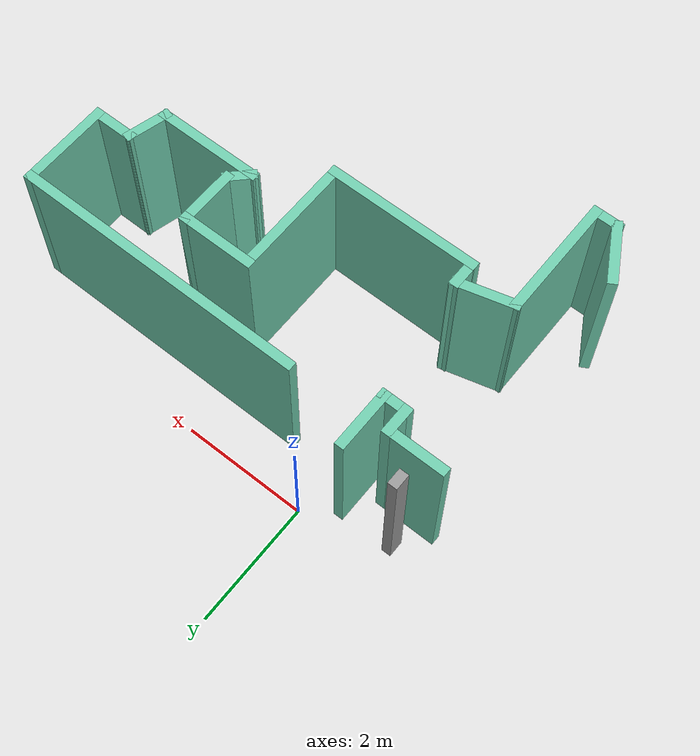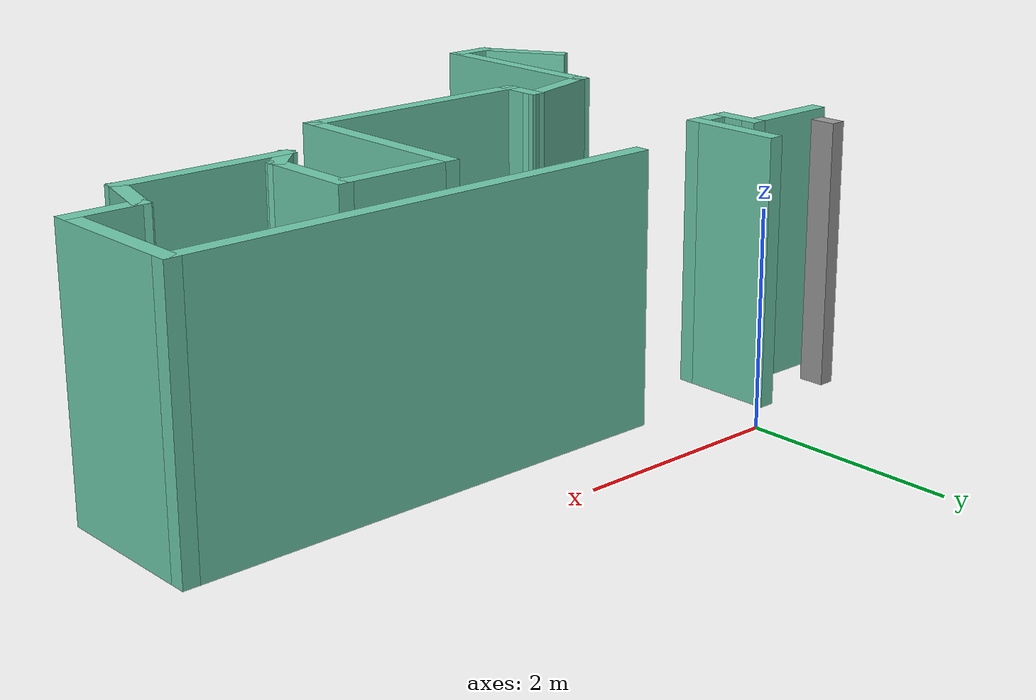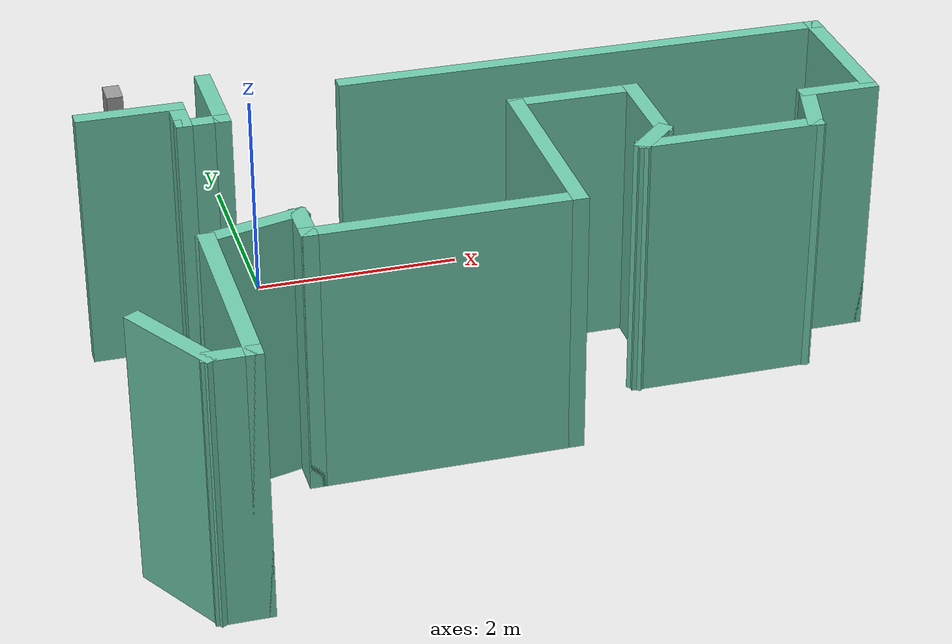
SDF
<sdf version="1.6">
 <model name="map_28">
  <link name="Wall_24">
   <pose>-1.3355 -0.419695 0 0 -0 1.5708</pose>
   <visual name="Wall_24_Visual">
    <pose>0 0 1.25 0 -0 0</pose>
    <geometry><box><size>0.25 0.15 2.5</size></box></geometry>
    <material>
     <script><uri>file://media/materials/scripts/gazebo.material</uri><name>Gazebo/Grey</name></script>
     <ambient>1 1 1 1</ambient>
     <shader type="pixel"/>
    </material>
    <meta><layer>0</layer></meta>
   </visual>
   <collision name="Wall_24_Collision">
    <pose>0 0 1.25 0 -0 0</pose>
    <geometry><box><size>0.25 0.15 2.5</size></box></geometry>
    <surface>
     <friction>
      <ode><mu>1</mu><mu2>1</mu2><fdir1>0 0 0</fdir1><slip1>0</slip1><slip2>0</slip2></ode>
      <torsional>
       <coefficient>1</coefficient>
       <patch_radius>0</patch_radius>
       <surface_radius>0</surface_radius>
       <use_patch_radius>1</use_patch_radius>
       <ode><slip>0</slip></ode>
      </torsional>
     </friction>
     <bounce><restitution_coefficient>0</restitution_coefficient><threshold>1e+06</threshold></bounce>
     <contact>
      <collide_without_contact>0</collide_without_contact>
      <collide_without_contact_bitmask>1</collide_without_contact_bitmask>
      <collide_bitmask>1</collide_bitmask>
      <ode>
       <soft_cfm>0</soft_cfm>
       <soft_erp>0.2</soft_erp>
       <kp>1e+13</kp>
       <kd>1</kd>
       <max_vel>0.01</max_vel>
       <min_depth>0</min_depth>
      </ode>
      <bullet>
       <split_impulse>1</split_impulse>
       <split_impulse_penetration_threshold>-0.01</split_impulse_penetration_threshold>
       <soft_cfm>0</soft_cfm>
       <soft_erp>0.2</soft_erp>
       <kp>1e+13</kp>
       <kd>1</kd>
      </bullet>
     </contact>
    </surface>
   </collision>
  </link>
  <link name="Wall_26">
   <pose>-0.485501 -0.794695 0 0 0 -1.5708</pose>
   <visual name="Wall_26_Visual">
    <pose>0 0 1.25 0 -0 0</pose>
    <geometry><box><size>1 0.15 2.5</size></box></geometry>
    <material>
     <script><uri>file://media/materials/scripts/gazebo.material</uri><name>Gazebo/Grey</name></script>
     <ambient>0.435294 0.796078 0.67451 1</ambient>
     <shader type="pixel"/>
    </material>
    <meta><layer>0</layer></meta>
   </visual>
   <collision name="Wall_26_Collision">
    <pose>0 0 1.25 0 -0 0</pose>
    <geometry><box><size>1 0.15 2.5</size></box></geometry>
    <surface>
     <friction>
      <ode><mu>1</mu><mu2>1</mu2><fdir1>0 0 0</fdir1><slip1>0</slip1><slip2>0</slip2></ode>
      <torsional>
       <coefficient>1</coefficient>
       <patch_radius>0</patch_radius>
       <surface_radius>0</surface_radius>
       <use_patch_radius>1</use_patch_radius>
       <ode><slip>0</slip></ode>
      </torsional>
     </friction>
     <bounce><restitution_coefficient>0</restitution_coefficient><threshold>1e+06</threshold></bounce>
     <contact>
      <collide_without_contact>0</collide_without_contact>
      <collide_without_contact_bitmask>1</collide_without_contact_bitmask>
      <collide_bitmask>1</collide_bitmask>
      <ode>
       <soft_cfm>0</soft_cfm>
       <soft_erp>0.2</soft_erp>
       <kp>1e+13</kp>
       <kd>1</kd>
       <max_vel>0.01</max_vel>
       <min_depth>0</min_depth>
      </ode>
      <bullet>
       <split_impulse>1</split_impulse>
       <split_impulse_penetration_threshold>-0.01</split_impulse_penetration_threshold>
       <soft_cfm>0</soft_cfm>
       <soft_erp>0.2</soft_erp>
       <kp>1e+13</kp>
       <kd>1</kd>
      </bullet>
     </contact>
    </surface>
   </collision>
  </link>
  <link name="Wall_27">
   <pose>-0.660501 -1.21969 0 0 -0 3.14159</pose>
   <visual name="Wall_27_Visual">
    <pose>0 0 1.25 0 -0 0</pose>
    <geometry><box><size>0.5 0.15 2.5</size></box></geometry>
    <material>
     <script><uri>file://media/materials/scripts/gazebo.material</uri><name>Gazebo/Grey</name></script>
     <ambient>0.435294 0.796078 0.67451 1</ambient>
     <shader type="pixel"/>
    </material>
    <meta><layer>0</layer></meta>
   </visual>
   <collision name="Wall_27_Collision">
    <pose>0 0 1.25 0 -0 0</pose>
    <geometry><box><size>0.5 0.15 2.5</size></box></geometry>
    <surface>
     <friction>
      <ode><mu>1</mu><mu2>1</mu2><fdir1>0 0 0</fdir1><slip1>0</slip1><slip2>0</slip2></ode>
      <torsional>
       <coefficient>1</coefficient>
       <patch_radius>0</patch_radius>
       <surface_radius>0</surface_radius>
       <use_patch_radius>1</use_patch_radius>
       <ode><slip>0</slip></ode>
      </torsional>
     </friction>
     <bounce><restitution_coefficient>0</restitution_coefficient><threshold>1e+06</threshold></bounce>
     <contact>
      <collide_without_contact>0</collide_without_contact>
      <collide_without_contact_bitmask>1</collide_without_contact_bitmask>
      <collide_bitmask>1</collide_bitmask>
      <ode>
       <soft_cfm>0</soft_cfm>
       <soft_erp>0.2</soft_erp>
       <kp>1e+13</kp>
       <kd>1</kd>
       <max_vel>0.01</max_vel>
       <min_depth>0</min_depth>
      </ode>
      <bullet>
       <split_impulse>1</split_impulse>
       <split_impulse_penetration_threshold>-0.01</split_impulse_penetration_threshold>
       <soft_cfm>0</soft_cfm>
       <soft_erp>0.2</soft_erp>
       <kp>1e+13</kp>
       <kd>1</kd>
      </bullet>
     </contact>
    </surface>
   </collision>
  </link>
  <link name="Wall_34">
   <pose>-0.835501 -1.04469 0 0 -0 1.5708</pose>
   <visual name="Wall_34_Visual">
    <pose>0 0 1.25 0 -0 0</pose>
    <geometry><box><size>0.5 0.15 2.5</size></box></geometry>
    <material>
     <script><uri>file://media/materials/scripts/gazebo.material</uri><name>Gazebo/Grey</name></script>
     <ambient>0.435294 0.796078 0.67451 1</ambient>
     <shader type="pixel"/>
    </material>
    <meta><layer>0</layer></meta>
   </visual>
   <collision name="Wall_34_Collision">
    <pose>0 0 1.25 0 -0 0</pose>
    <geometry><box><size>0.5 0.15 2.5</size></box></geometry>
    <surface>
     <friction>
      <ode><mu>1</mu><mu2>1</mu2><fdir1>0 0 0</fdir1><slip1>0</slip1><slip2>0</slip2></ode>
      <torsional>
       <coefficient>1</coefficient>
       <patch_radius>0</patch_radius>
       <surface_radius>0</surface_radius>
       <use_patch_radius>1</use_patch_radius>
       <ode><slip>0</slip></ode>
      </torsional>
     </friction>
     <bounce><restitution_coefficient>0</restitution_coefficient><threshold>1e+06</threshold></bounce>
     <contact>
      <collide_without_contact>0</collide_without_contact>
      <collide_without_contact_bitmask>1</collide_without_contact_bitmask>
      <collide_bitmask>1</collide_bitmask>
      <ode>
       <soft_cfm>0</soft_cfm>
       <soft_erp>0.2</soft_erp>
       <kp>1e+13</kp>
       <kd>1</kd>
       <max_vel>0.01</max_vel>
       <min_depth>0</min_depth>
      </ode>
      <bullet>
       <split_impulse>1</split_impulse>
       <split_impulse_penetration_threshold>-0.01</split_impulse_penetration_threshold>
       <soft_cfm>0</soft_cfm>
       <soft_erp>0.2</soft_erp>
       <kp>1e+13</kp>
       <kd>1</kd>
      </bullet>
     </contact>
    </surface>
   </collision>
  </link>
  <link name="Wall_37">
   <pose>-1.2605 -0.869695 0 0 -0 3.14159</pose>
   <visual name="Wall_37_Visual">
    <pose>0 0 1.25 0 -0 0</pose>
    <geometry><box><size>1 0.15 2.5</size></box></geometry>
    <material>
     <script><uri>file://media/materials/scripts/gazebo.material</uri><name>Gazebo/Grey</name></script>
     <ambient>0.435294 0.796078 0.67451 1</ambient>
     <shader type="pixel"/>
    </material>
    <meta><layer>0</layer></meta>
   </visual>
   <collision name="Wall_37_Collision">
    <pose>0 0 1.25 0 -0 0</pose>
    <geometry><box><size>1 0.15 2.5</size></box></geometry>
    <surface>
     <friction>
      <ode><mu>1</mu><mu2>1</mu2><fdir1>0 0 0</fdir1><slip1>0</slip1><slip2>0</slip2></ode>
      <torsional>
       <coefficient>1</coefficient>
       <patch_radius>0</patch_radius>
       <surface_radius>0</surface_radius>
       <use_patch_radius>1</use_patch_radius>
       <ode><slip>0</slip></ode>
      </torsional>
     </friction>
     <bounce><restitution_coefficient>0</restitution_coefficient><threshold>1e+06</threshold></bounce>
     <contact>
      <collide_without_contact>0</collide_without_contact>
      <collide_without_contact_bitmask>1</collide_without_contact_bitmask>
      <collide_bitmask>1</collide_bitmask>
      <ode>
       <soft_cfm>0</soft_cfm>
       <soft_erp>0.2</soft_erp>
       <kp>1e+13</kp>
       <kd>1</kd>
       <max_vel>0.01</max_vel>
       <min_depth>0</min_depth>
      </ode>
      <bullet>
       <split_impulse>1</split_impulse>
       <split_impulse_penetration_threshold>-0.01</split_impulse_penetration_threshold>
       <soft_cfm>0</soft_cfm>
       <soft_erp>0.2</soft_erp>
       <kp>1e+13</kp>
       <kd>1</kd>
      </bullet>
     </contact>
    </surface>
   </collision>
  </link>
  <link name="Wall_55">
   <pose>-1.59238 -4.82675 0 0 0 -1.0472</pose>
   <visual name="Wall_55_Visual">
    <pose>0 0 1.25 0 -0 0</pose>
    <geometry><box><size>1 0.15 2.5</size></box></geometry>
    <material>
     <script><uri>file://media/materials/scripts/gazebo.material</uri><name>Gazebo/Grey</name></script>
     <ambient>0.435294 0.796078 0.67451 1</ambient>
     <shader type="pixel"/>
    </material>
    <meta><layer>0</layer></meta>
   </visual>
   <collision name="Wall_55_Collision">
    <pose>0 0 1.25 0 -0 0</pose>
    <geometry><box><size>1 0.15 2.5</size></box></geometry>
    <surface>
     <friction>
      <ode><mu>1</mu><mu2>1</mu2><fdir1>0 0 0</fdir1><slip1>0</slip1><slip2>0</slip2></ode>
      <torsional>
       <coefficient>1</coefficient>
       <patch_radius>0</patch_radius>
       <surface_radius>0</surface_radius>
       <use_patch_radius>1</use_patch_radius>
       <ode><slip>0</slip></ode>
      </torsional>
     </friction>
     <bounce><restitution_coefficient>0</restitution_coefficient><threshold>1e+06</threshold></bounce>
     <contact>
      <collide_without_contact>0</collide_without_contact>
      <collide_without_contact_bitmask>1</collide_without_contact_bitmask>
      <collide_bitmask>1</collide_bitmask>
      <ode>
       <soft_cfm>0</soft_cfm>
       <soft_erp>0.2</soft_erp>
       <kp>1e+13</kp>
       <kd>1</kd>
       <max_vel>0.01</max_vel>
       <min_depth>0</min_depth>
      </ode>
      <bullet>
       <split_impulse>1</split_impulse>
       <split_impulse_penetration_threshold>-0.01</split_impulse_penetration_threshold>
       <soft_cfm>0</soft_cfm>
       <soft_erp>0.2</soft_erp>
       <kp>1e+13</kp>
       <kd>1</kd>
      </bullet>
     </contact>
    </surface>
   </collision>
  </link>
  <link name="Wall_56">
   <pose>-1.20488 -5.19481 0 0 -0 0</pose>
   <visual name="Wall_56_Visual">
    <pose>0 0 1.25 0 -0 0</pose>
    <geometry><box><size>0.5 0.15 2.5</size></box></geometry>
    <material>
     <script><uri>file://media/materials/scripts/gazebo.material</uri><name>Gazebo/Grey</name></script>
     <ambient>0.435294 0.796078 0.67451 1</ambient>
     <shader type="pixel"/>
    </material>
    <meta><layer>0</layer></meta>
   </visual>
   <collision name="Wall_56_Collision">
    <pose>0 0 1.25 0 -0 0</pose>
    <geometry><box><size>0.5 0.15 2.5</size></box></geometry>
    <surface>
     <friction>
      <ode><mu>1</mu><mu2>1</mu2><fdir1>0 0 0</fdir1><slip1>0</slip1><slip2>0</slip2></ode>
      <torsional>
       <coefficient>1</coefficient>
       <patch_radius>0</patch_radius>
       <surface_radius>0</surface_radius>
       <use_patch_radius>1</use_patch_radius>
       <ode><slip>0</slip></ode>
      </torsional>
     </friction>
     <bounce><restitution_coefficient>0</restitution_coefficient><threshold>1e+06</threshold></bounce>
     <contact>
      <collide_without_contact>0</collide_without_contact>
      <collide_without_contact_bitmask>1</collide_without_contact_bitmask>
      <collide_bitmask>1</collide_bitmask>
      <ode>
       <soft_cfm>0</soft_cfm>
       <soft_erp>0.2</soft_erp>
       <kp>1e+13</kp>
       <kd>1</kd>
       <max_vel>0.01</max_vel>
       <min_depth>0</min_depth>
      </ode>
      <bullet>
       <split_impulse>1</split_impulse>
       <split_impulse_penetration_threshold>-0.01</split_impulse_penetration_threshold>
       <soft_cfm>0</soft_cfm>
       <soft_erp>0.2</soft_erp>
       <kp>1e+13</kp>
       <kd>1</kd>
      </bullet>
     </contact>
    </surface>
   </collision>
  </link>
  <link name="Wall_57">
   <pose>-1.02988 -4.26981 0 0 -0 1.5708</pose>
   <visual name="Wall_57_Visual">
    <pose>0 0 1.25 0 -0 0</pose>
    <geometry><box><size>2 0.15 2.5</size></box></geometry>
    <material>
     <script><uri>file://media/materials/scripts/gazebo.material</uri><name>Gazebo/Grey</name></script>
     <ambient>0.435294 0.796078 0.67451 1</ambient>
     <shader type="pixel"/>
    </material>
    <meta><layer>0</layer></meta>
   </visual>
   <collision name="Wall_57_Collision">
    <pose>0 0 1.25 0 -0 0</pose>
    <geometry><box><size>2 0.15 2.5</size></box></geometry>
    <surface>
     <friction>
      <ode><mu>1</mu><mu2>1</mu2><fdir1>0 0 0</fdir1><slip1>0</slip1><slip2>0</slip2></ode>
      <torsional>
       <coefficient>1</coefficient>
       <patch_radius>0</patch_radius>
       <surface_radius>0</surface_radius>
       <use_patch_radius>1</use_patch_radius>
       <ode><slip>0</slip></ode>
      </torsional>
     </friction>
     <bounce><restitution_coefficient>0</restitution_coefficient><threshold>1e+06</threshold></bounce>
     <contact>
      <collide_without_contact>0</collide_without_contact>
      <collide_without_contact_bitmask>1</collide_without_contact_bitmask>
      <collide_bitmask>1</collide_bitmask>
      <ode>
       <soft_cfm>0</soft_cfm>
       <soft_erp>0.2</soft_erp>
       <kp>1e+13</kp>
       <kd>1</kd>
       <max_vel>0.01</max_vel>
       <min_depth>0</min_depth>
      </ode>
      <bullet>
       <split_impulse>1</split_impulse>
       <split_impulse_penetration_threshold>-0.01</split_impulse_penetration_threshold>
       <soft_cfm>0</soft_cfm>
       <soft_erp>0.2</soft_erp>
       <kp>1e+13</kp>
       <kd>1</kd>
      </bullet>
     </contact>
    </surface>
   </collision>
  </link>
  <link name="Wall_58">
   <pose>-0.619361 -3.23481 0 0 -0 0.261799</pose>
   <visual name="Wall_58_Visual">
    <pose>0 0 1.25 0 -0 0</pose>
    <geometry><box><size>1 0.15 2.5</size></box></geometry>
    <material>
     <script><uri>file://media/materials/scripts/gazebo.material</uri><name>Gazebo/Grey</name></script>
     <ambient>0.435294 0.796078 0.67451 1</ambient>
     <shader type="pixel"/>
    </material>
    <meta><layer>0</layer></meta>
   </visual>
   <collision name="Wall_58_Collision">
    <pose>0 0 1.25 0 -0 0</pose>
    <geometry><box><size>1 0.15 2.5</size></box></geometry>
    <surface>
     <friction>
      <ode><mu>1</mu><mu2>1</mu2><fdir1>0 0 0</fdir1><slip1>0</slip1><slip2>0</slip2></ode>
      <torsional>
       <coefficient>1</coefficient>
       <patch_radius>0</patch_radius>
       <surface_radius>0</surface_radius>
       <use_patch_radius>1</use_patch_radius>
       <ode><slip>0</slip></ode>
      </torsional>
     </friction>
     <bounce><restitution_coefficient>0</restitution_coefficient><threshold>1e+06</threshold></bounce>
     <contact>
      <collide_without_contact>0</collide_without_contact>
      <collide_without_contact_bitmask>1</collide_without_contact_bitmask>
      <collide_bitmask>1</collide_bitmask>
      <ode>
       <soft_cfm>0</soft_cfm>
       <soft_erp>0.2</soft_erp>
       <kp>1e+13</kp>
       <kd>1</kd>
       <max_vel>0.01</max_vel>
       <min_depth>0</min_depth>
      </ode>
      <bullet>
       <split_impulse>1</split_impulse>
       <split_impulse_penetration_threshold>-0.01</split_impulse_penetration_threshold>
       <soft_cfm>0</soft_cfm>
       <soft_erp>0.2</soft_erp>
       <kp>1e+13</kp>
       <kd>1</kd>
      </bullet>
     </contact>
    </surface>
   </collision>
  </link>
  <link name="Wall_59">
   <pose>-0.208842 -3.29981 0 0 0 -1.5708</pose>
   <visual name="Wall_59_Visual">
    <pose>0 0 1.25 0 -0 0</pose>
    <geometry><box><size>0.5 0.15 2.5</size></box></geometry>
    <material>
     <script><uri>file://media/materials/scripts/gazebo.material</uri><name>Gazebo/Grey</name></script>
     <ambient>0.435294 0.796078 0.67451 1</ambient>
     <shader type="pixel"/>
    </material>
    <meta><layer>0</layer></meta>
   </visual>
   <collision name="Wall_59_Collision">
    <pose>0 0 1.25 0 -0 0</pose>
    <geometry><box><size>0.5 0.15 2.5</size></box></geometry>
    <surface>
     <friction>
      <ode><mu>1</mu><mu2>1</mu2><fdir1>0 0 0</fdir1><slip1>0</slip1><slip2>0</slip2></ode>
      <torsional>
       <coefficient>1</coefficient>
       <patch_radius>0</patch_radius>
       <surface_radius>0</surface_radius>
       <use_patch_radius>1</use_patch_radius>
       <ode><slip>0</slip></ode>
      </torsional>
     </friction>
     <bounce><restitution_coefficient>0</restitution_coefficient><threshold>1e+06</threshold></bounce>
     <contact>
      <collide_without_contact>0</collide_without_contact>
      <collide_without_contact_bitmask>1</collide_without_contact_bitmask>
      <collide_bitmask>1</collide_bitmask>
      <ode>
       <soft_cfm>0</soft_cfm>
       <soft_erp>0.2</soft_erp>
       <kp>1e+13</kp>
       <kd>1</kd>
       <max_vel>0.01</max_vel>
       <min_depth>0</min_depth>
      </ode>
      <bullet>
       <split_impulse>1</split_impulse>
       <split_impulse_penetration_threshold>-0.01</split_impulse_penetration_threshold>
       <soft_cfm>0</soft_cfm>
       <soft_erp>0.2</soft_erp>
       <kp>1e+13</kp>
       <kd>1</kd>
      </bullet>
     </contact>
    </surface>
   </collision>
  </link>
  <link name="Wall_60">
   <pose>0.966158 -3.47481 0 0 -0 0</pose>
   <visual name="Wall_60_Visual">
    <pose>0 0 1.25 0 -0 0</pose>
    <geometry><box><size>2.5 0.15 2.5</size></box></geometry>
    <material>
     <script><uri>file://media/materials/scripts/gazebo.material</uri><name>Gazebo/Grey</name></script>
     <ambient>0.435294 0.796078 0.67451 1</ambient>
     <shader type="pixel"/>
    </material>
    <meta><layer>0</layer></meta>
   </visual>
   <collision name="Wall_60_Collision">
    <pose>0 0 1.25 0 -0 0</pose>
    <geometry><box><size>2.5 0.15 2.5</size></box></geometry>
    <surface>
     <friction>
      <ode><mu>1</mu><mu2>1</mu2><fdir1>0 0 0</fdir1><slip1>0</slip1><slip2>0</slip2></ode>
      <torsional>
       <coefficient>1</coefficient>
       <patch_radius>0</patch_radius>
       <surface_radius>0</surface_radius>
       <use_patch_radius>1</use_patch_radius>
       <ode><slip>0</slip></ode>
      </torsional>
     </friction>
     <bounce><restitution_coefficient>0</restitution_coefficient><threshold>1e+06</threshold></bounce>
     <contact>
      <collide_without_contact>0</collide_without_contact>
      <collide_without_contact_bitmask>1</collide_without_contact_bitmask>
      <collide_bitmask>1</collide_bitmask>
      <ode>
       <soft_cfm>0</soft_cfm>
       <soft_erp>0.2</soft_erp>
       <kp>1e+13</kp>
       <kd>1</kd>
       <max_vel>0.01</max_vel>
       <min_depth>0</min_depth>
      </ode>
      <bullet>
       <split_impulse>1</split_impulse>
       <split_impulse_penetration_threshold>-0.01</split_impulse_penetration_threshold>
       <soft_cfm>0</soft_cfm>
       <soft_erp>0.2</soft_erp>
       <kp>1e+13</kp>
       <kd>1</kd>
      </bullet>
     </contact>
    </surface>
   </collision>
  </link>
  <link name="Wall_61">
   <pose>2.14116 -2.54981 0 0 -0 1.5708</pose>
   <visual name="Wall_61_Visual">
    <pose>0 0 1.25 0 -0 0</pose>
    <geometry><box><size>2 0.15 2.5</size></box></geometry>
    <material>
     <script><uri>file://media/materials/scripts/gazebo.material</uri><name>Gazebo/Grey</name></script>
     <ambient>0.435294 0.796078 0.67451 1</ambient>
     <shader type="pixel"/>
    </material>
    <meta><layer>0</layer></meta>
   </visual>
   <collision name="Wall_61_Collision">
    <pose>0 0 1.25 0 -0 0</pose>
    <geometry><box><size>2 0.15 2.5</size></box></geometry>
    <surface>
     <friction>
      <ode><mu>1</mu><mu2>1</mu2><fdir1>0 0 0</fdir1><slip1>0</slip1><slip2>0</slip2></ode>
      <torsional>
       <coefficient>1</coefficient>
       <patch_radius>0</patch_radius>
       <surface_radius>0</surface_radius>
       <use_patch_radius>1</use_patch_radius>
       <ode><slip>0</slip></ode>
      </torsional>
     </friction>
     <bounce><restitution_coefficient>0</restitution_coefficient><threshold>1e+06</threshold></bounce>
     <contact>
      <collide_without_contact>0</collide_without_contact>
      <collide_without_contact_bitmask>1</collide_without_contact_bitmask>
      <collide_bitmask>1</collide_bitmask>
      <ode>
       <soft_cfm>0</soft_cfm>
       <soft_erp>0.2</soft_erp>
       <kp>1e+13</kp>
       <kd>1</kd>
       <max_vel>0.01</max_vel>
       <min_depth>0</min_depth>
      </ode>
      <bullet>
       <split_impulse>1</split_impulse>
       <split_impulse_penetration_threshold>-0.01</split_impulse_penetration_threshold>
       <soft_cfm>0</soft_cfm>
       <soft_erp>0.2</soft_erp>
       <kp>1e+13</kp>
       <kd>1</kd>
      </bullet>
     </contact>
    </surface>
   </collision>
  </link>
  <link name="Wall_62">
   <pose>2.69116 -1.62481 0 0 -0 0</pose>
   <visual name="Wall_62_Visual">
    <pose>0 0 1.25 0 -0 0</pose>
    <geometry><box><size>1.25 0.15 2.5</size></box></geometry>
    <material>
     <script><uri>file://media/materials/scripts/gazebo.material</uri><name>Gazebo/Grey</name></script>
     <ambient>0.435294 0.796078 0.67451 1</ambient>
     <shader type="pixel"/>
    </material>
    <meta><layer>0</layer></meta>
   </visual>
   <collision name="Wall_62_Collision">
    <pose>0 0 1.25 0 -0 0</pose>
    <geometry><box><size>1.25 0.15 2.5</size></box></geometry>
    <surface>
     <friction>
      <ode><mu>1</mu><mu2>1</mu2><fdir1>0 0 0</fdir1><slip1>0</slip1><slip2>0</slip2></ode>
      <torsional>
       <coefficient>1</coefficient>
       <patch_radius>0</patch_radius>
       <surface_radius>0</surface_radius>
       <use_patch_radius>1</use_patch_radius>
       <ode><slip>0</slip></ode>
      </torsional>
     </friction>
     <bounce><restitution_coefficient>0</restitution_coefficient><threshold>1e+06</threshold></bounce>
     <contact>
      <collide_without_contact>0</collide_without_contact>
      <collide_without_contact_bitmask>1</collide_without_contact_bitmask>
      <collide_bitmask>1</collide_bitmask>
      <ode>
       <soft_cfm>0</soft_cfm>
       <soft_erp>0.2</soft_erp>
       <kp>1e+13</kp>
       <kd>1</kd>
       <max_vel>0.01</max_vel>
       <min_depth>0</min_depth>
      </ode>
      <bullet>
       <split_impulse>1</split_impulse>
       <split_impulse_penetration_threshold>-0.01</split_impulse_penetration_threshold>
       <soft_cfm>0</soft_cfm>
       <soft_erp>0.2</soft_erp>
       <kp>1e+13</kp>
       <kd>1</kd>
      </bullet>
     </contact>
    </surface>
   </collision>
  </link>
  <link name="Wall_63">
   <pose>3.24116 -2.04981 0 0 0 -1.5708</pose>
   <visual name="Wall_63_Visual">
    <pose>0 0 1.25 0 -0 0</pose>
    <geometry><box><size>1 0.15 2.5</size></box></geometry>
    <material>
     <script><uri>file://media/materials/scripts/gazebo.material</uri><name>Gazebo/Grey</name></script>
     <ambient>0.435294 0.796078 0.67451 1</ambient>
     <shader type="pixel"/>
    </material>
    <meta><layer>0</layer></meta>
   </visual>
   <collision name="Wall_63_Collision">
    <pose>0 0 1.25 0 -0 0</pose>
    <geometry><box><size>1 0.15 2.5</size></box></geometry>
    <surface>
     <friction>
      <ode><mu>1</mu><mu2>1</mu2><fdir1>0 0 0</fdir1><slip1>0</slip1><slip2>0</slip2></ode>
      <torsional>
       <coefficient>1</coefficient>
       <patch_radius>0</patch_radius>
       <surface_radius>0</surface_radius>
       <use_patch_radius>1</use_patch_radius>
       <ode><slip>0</slip></ode>
      </torsional>
     </friction>
     <bounce><restitution_coefficient>0</restitution_coefficient><threshold>1e+06</threshold></bounce>
     <contact>
      <collide_without_contact>0</collide_without_contact>
      <collide_without_contact_bitmask>1</collide_without_contact_bitmask>
      <collide_bitmask>1</collide_bitmask>
      <ode>
       <soft_cfm>0</soft_cfm>
       <soft_erp>0.2</soft_erp>
       <kp>1e+13</kp>
       <kd>1</kd>
       <max_vel>0.01</max_vel>
       <min_depth>0</min_depth>
      </ode>
      <bullet>
       <split_impulse>1</split_impulse>
       <split_impulse_penetration_threshold>-0.01</split_impulse_penetration_threshold>
       <soft_cfm>0</soft_cfm>
       <soft_erp>0.2</soft_erp>
       <kp>1e+13</kp>
       <kd>1</kd>
      </bullet>
     </contact>
    </surface>
   </collision>
  </link>
  <link name="Wall_64">
   <pose>3.11741 -2.59856 0 0 0 -2.35619</pose>
   <visual name="Wall_64_Visual">
    <pose>0 0 1.25 0 -0 0</pose>
    <geometry><box><size>0.5 0.15 2.5</size></box></geometry>
    <material>
     <script><uri>file://media/materials/scripts/gazebo.material</uri><name>Gazebo/Grey</name></script>
     <ambient>0.435294 0.796078 0.67451 1</ambient>
     <shader type="pixel"/>
    </material>
    <meta><layer>0</layer></meta>
   </visual>
   <collision name="Wall_64_Collision">
    <pose>0 0 1.25 0 -0 0</pose>
    <geometry><box><size>0.5 0.15 2.5</size></box></geometry>
    <surface>
     <friction>
      <ode><mu>1</mu><mu2>1</mu2><fdir1>0 0 0</fdir1><slip1>0</slip1><slip2>0</slip2></ode>
      <torsional>
       <coefficient>1</coefficient>
       <patch_radius>0</patch_radius>
       <surface_radius>0</surface_radius>
       <use_patch_radius>1</use_patch_radius>
       <ode><slip>0</slip></ode>
      </torsional>
     </friction>
     <bounce><restitution_coefficient>0</restitution_coefficient><threshold>1e+06</threshold></bounce>
     <contact>
      <collide_without_contact>0</collide_without_contact>
      <collide_without_contact_bitmask>1</collide_without_contact_bitmask>
      <collide_bitmask>1</collide_bitmask>
      <ode>
       <soft_cfm>0</soft_cfm>
       <soft_erp>0.2</soft_erp>
       <kp>1e+13</kp>
       <kd>1</kd>
       <max_vel>0.01</max_vel>
       <min_depth>0</min_depth>
      </ode>
      <bullet>
       <split_impulse>1</split_impulse>
       <split_impulse_penetration_threshold>-0.01</split_impulse_penetration_threshold>
       <soft_cfm>0</soft_cfm>
       <soft_erp>0.2</soft_erp>
       <kp>1e+13</kp>
       <kd>1</kd>
      </bullet>
     </contact>
    </surface>
   </collision>
  </link>
  <link name="Wall_65">
   <pose>3.79367 -2.7223 0 0 -0 0</pose>
   <visual name="Wall_65_Visual">
    <pose>0 0 1.25 0 -0 0</pose>
    <geometry><box><size>1.75 0.15 2.5</size></box></geometry>
    <material>
     <script><uri>file://media/materials/scripts/gazebo.material</uri><name>Gazebo/Grey</name></script>
     <ambient>0.435294 0.796078 0.67451 1</ambient>
     <shader type="pixel"/>
    </material>
    <meta><layer>0</layer></meta>
   </visual>
   <collision name="Wall_65_Collision">
    <pose>0 0 1.25 0 -0 0</pose>
    <geometry><box><size>1.75 0.15 2.5</size></box></geometry>
    <surface>
     <friction>
      <ode><mu>1</mu><mu2>1</mu2><fdir1>0 0 0</fdir1><slip1>0</slip1><slip2>0</slip2></ode>
      <torsional>
       <coefficient>1</coefficient>
       <patch_radius>0</patch_radius>
       <surface_radius>0</surface_radius>
       <use_patch_radius>1</use_patch_radius>
       <ode><slip>0</slip></ode>
      </torsional>
     </friction>
     <bounce><restitution_coefficient>0</restitution_coefficient><threshold>1e+06</threshold></bounce>
     <contact>
      <collide_without_contact>0</collide_without_contact>
      <collide_without_contact_bitmask>1</collide_without_contact_bitmask>
      <collide_bitmask>1</collide_bitmask>
      <ode>
       <soft_cfm>0</soft_cfm>
       <soft_erp>0.2</soft_erp>
       <kp>1e+13</kp>
       <kd>1</kd>
       <max_vel>0.01</max_vel>
       <min_depth>0</min_depth>
      </ode>
      <bullet>
       <split_impulse>1</split_impulse>
       <split_impulse_penetration_threshold>-0.01</split_impulse_penetration_threshold>
       <soft_cfm>0</soft_cfm>
       <soft_erp>0.2</soft_erp>
       <kp>1e+13</kp>
       <kd>1</kd>
      </bullet>
     </contact>
    </surface>
   </collision>
  </link>
  <link name="Wall_66">
   <pose>4.67132 -2.43252 0 0 -0 1.309</pose>
   <visual name="Wall_66_Visual">
    <pose>0 0 1.25 0 -0 0</pose>
    <geometry><box><size>0.75 0.15 2.5</size></box></geometry>
    <material>
     <script><uri>file://media/materials/scripts/gazebo.material</uri><name>Gazebo/Grey</name></script>
     <ambient>0.435294 0.796078 0.67451 1</ambient>
     <shader type="pixel"/>
    </material>
    <meta><layer>0</layer></meta>
   </visual>
   <collision name="Wall_66_Collision">
    <pose>0 0 1.25 0 -0 0</pose>
    <geometry><box><size>0.75 0.15 2.5</size></box></geometry>
    <surface>
     <friction>
      <ode><mu>1</mu><mu2>1</mu2><fdir1>0 0 0</fdir1><slip1>0</slip1><slip2>0</slip2></ode>
      <torsional>
       <coefficient>1</coefficient>
       <patch_radius>0</patch_radius>
       <surface_radius>0</surface_radius>
       <use_patch_radius>1</use_patch_radius>
       <ode><slip>0</slip></ode>
      </torsional>
     </friction>
     <bounce><restitution_coefficient>0</restitution_coefficient><threshold>1e+06</threshold></bounce>
     <contact>
      <collide_without_contact>0</collide_without_contact>
      <collide_without_contact_bitmask>1</collide_without_contact_bitmask>
      <collide_bitmask>1</collide_bitmask>
      <ode>
       <soft_cfm>0</soft_cfm>
       <soft_erp>0.2</soft_erp>
       <kp>1e+13</kp>
       <kd>1</kd>
       <max_vel>0.01</max_vel>
       <min_depth>0</min_depth>
      </ode>
      <bullet>
       <split_impulse>1</split_impulse>
       <split_impulse_penetration_threshold>-0.01</split_impulse_penetration_threshold>
       <soft_cfm>0</soft_cfm>
       <soft_erp>0.2</soft_erp>
       <kp>1e+13</kp>
       <kd>1</kd>
      </bullet>
     </contact>
    </surface>
   </collision>
  </link>
  <link name="Wall_67">
   <pose>5.04896 -2.14275 0 0 -0 0</pose>
   <visual name="Wall_67_Visual">
    <pose>0 0 1.25 0 -0 0</pose>
    <geometry><box><size>0.75 0.15 2.5</size></box></geometry>
    <material>
     <script><uri>file://media/materials/scripts/gazebo.material</uri><name>Gazebo/Grey</name></script>
     <ambient>0.435294 0.796078 0.67451 1</ambient>
     <shader type="pixel"/>
    </material>
    <meta><layer>0</layer></meta>
   </visual>
   <collision name="Wall_67_Collision">
    <pose>0 0 1.25 0 -0 0</pose>
    <geometry><box><size>0.75 0.15 2.5</size></box></geometry>
    <surface>
     <friction>
      <ode><mu>1</mu><mu2>1</mu2><fdir1>0 0 0</fdir1><slip1>0</slip1><slip2>0</slip2></ode>
      <torsional>
       <coefficient>1</coefficient>
       <patch_radius>0</patch_radius>
       <surface_radius>0</surface_radius>
       <use_patch_radius>1</use_patch_radius>
       <ode><slip>0</slip></ode>
      </torsional>
     </friction>
     <bounce><restitution_coefficient>0</restitution_coefficient><threshold>1e+06</threshold></bounce>
     <contact>
      <collide_without_contact>0</collide_without_contact>
      <collide_without_contact_bitmask>1</collide_without_contact_bitmask>
      <collide_bitmask>1</collide_bitmask>
      <ode>
       <soft_cfm>0</soft_cfm>
       <soft_erp>0.2</soft_erp>
       <kp>1e+13</kp>
       <kd>1</kd>
       <max_vel>0.01</max_vel>
       <min_depth>0</min_depth>
      </ode>
      <bullet>
       <split_impulse>1</split_impulse>
       <split_impulse_penetration_threshold>-0.01</split_impulse_penetration_threshold>
       <soft_cfm>0</soft_cfm>
       <soft_erp>0.2</soft_erp>
       <kp>1e+13</kp>
       <kd>1</kd>
      </bullet>
     </contact>
    </surface>
   </collision>
  </link>
  <link name="Wall_68">
   <pose>5.34896 -1.46775 0 0 -0 1.5708</pose>
   <visual name="Wall_68_Visual">
    <pose>0 0 1.25 0 -0 0</pose>
    <geometry><box><size>1.5 0.15 2.5</size></box></geometry>
    <material>
     <script><uri>file://media/materials/scripts/gazebo.material</uri><name>Gazebo/Grey</name></script>
     <ambient>0.435294 0.796078 0.67451 1</ambient>
     <shader type="pixel"/>
    </material>
    <meta><layer>0</layer></meta>
   </visual>
   <collision name="Wall_68_Collision">
    <pose>0 0 1.25 0 -0 0</pose>
    <geometry><box><size>1.5 0.15 2.5</size></box></geometry>
    <surface>
     <friction>
      <ode><mu>1</mu><mu2>1</mu2><fdir1>0 0 0</fdir1><slip1>0</slip1><slip2>0</slip2></ode>
      <torsional>
       <coefficient>1</coefficient>
       <patch_radius>0</patch_radius>
       <surface_radius>0</surface_radius>
       <use_patch_radius>1</use_patch_radius>
       <ode><slip>0</slip></ode>
      </torsional>
     </friction>
     <bounce><restitution_coefficient>0</restitution_coefficient><threshold>1e+06</threshold></bounce>
     <contact>
      <collide_without_contact>0</collide_without_contact>
      <collide_without_contact_bitmask>1</collide_without_contact_bitmask>
      <collide_bitmask>1</collide_bitmask>
      <ode>
       <soft_cfm>0</soft_cfm>
       <soft_erp>0.2</soft_erp>
       <kp>1e+13</kp>
       <kd>1</kd>
       <max_vel>0.01</max_vel>
       <min_depth>0</min_depth>
      </ode>
      <bullet>
       <split_impulse>1</split_impulse>
       <split_impulse_penetration_threshold>-0.01</split_impulse_penetration_threshold>
       <soft_cfm>0</soft_cfm>
       <soft_erp>0.2</soft_erp>
       <kp>1e+13</kp>
       <kd>1</kd>
      </bullet>
     </contact>
    </surface>
   </collision>
  </link>
  <link name="Wall_69">
   <pose>3.04896 -0.792746 0 0 -0 3.14159</pose>
   <visual name="Wall_69_Visual">
    <pose>0 0 1.25 0 -0 0</pose>
    <geometry><box><size>4.75 0.15 2.5</size></box></geometry>
    <material>
     <script><uri>file://media/materials/scripts/gazebo.material</uri><name>Gazebo/Grey</name></script>
     <ambient>0.435294 0.796078 0.67451 1</ambient>
     <shader type="pixel"/>
    </material>
    <meta><layer>0</layer></meta>
   </visual>
   <collision name="Wall_69_Collision">
    <pose>0 0 1.25 0 -0 0</pose>
    <geometry><box><size>4.75 0.15 2.5</size></box></geometry>
    <surface>
     <friction>
      <ode><mu>1</mu><mu2>1</mu2><fdir1>0 0 0</fdir1><slip1>0</slip1><slip2>0</slip2></ode>
      <torsional>
       <coefficient>1</coefficient>
       <patch_radius>0</patch_radius>
       <surface_radius>0</surface_radius>
       <use_patch_radius>1</use_patch_radius>
       <ode><slip>0</slip></ode>
      </torsional>
     </friction>
     <bounce><restitution_coefficient>0</restitution_coefficient><threshold>1e+06</threshold></bounce>
     <contact>
      <collide_without_contact>0</collide_without_contact>
      <collide_without_contact_bitmask>1</collide_without_contact_bitmask>
      <collide_bitmask>1</collide_bitmask>
      <ode>
       <soft_cfm>0</soft_cfm>
       <soft_erp>0.2</soft_erp>
       <kp>1e+13</kp>
       <kd>1</kd>
       <max_vel>0.01</max_vel>
       <min_depth>0</min_depth>
      </ode>
      <bullet>
       <split_impulse>1</split_impulse>
       <split_impulse_penetration_threshold>-0.01</split_impulse_penetration_threshold>
       <soft_cfm>0</soft_cfm>
       <soft_erp>0.2</soft_erp>
       <kp>1e+13</kp>
       <kd>1</kd>
      </bullet>
     </contact>
    </surface>
   </collision>
  </link>
  <static>1</static>
 </model>
</sdf>
